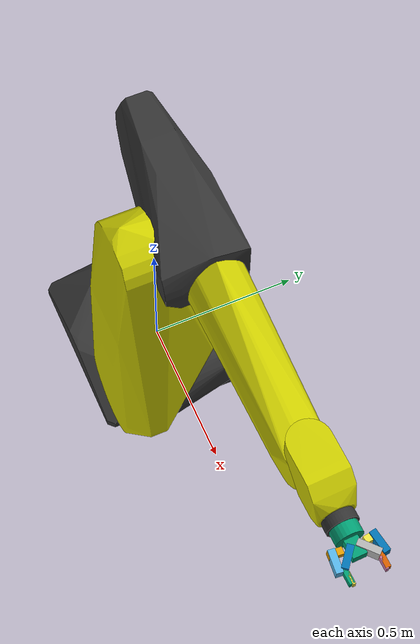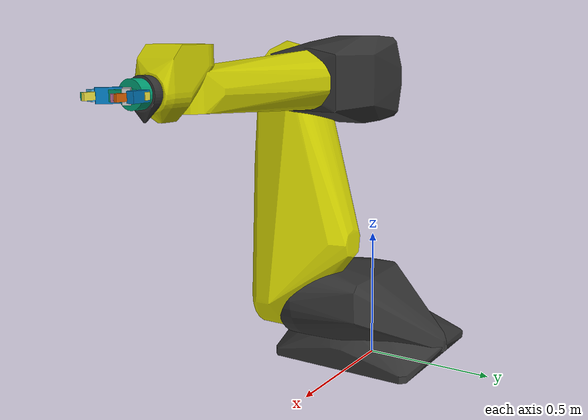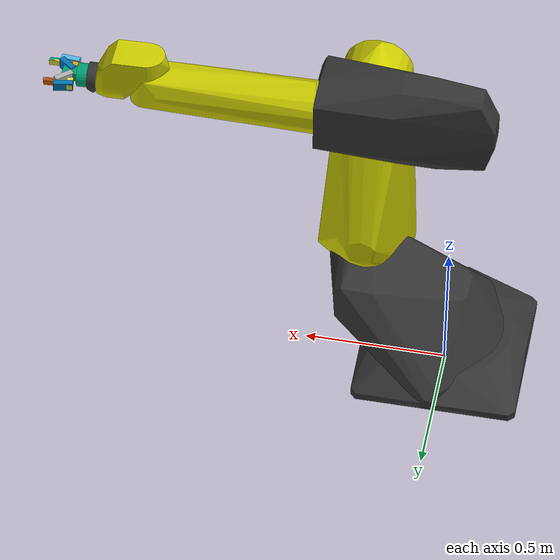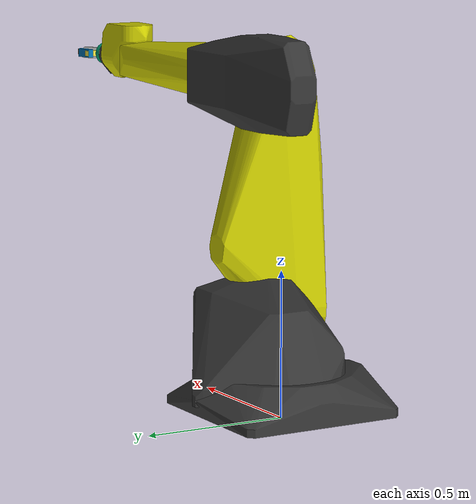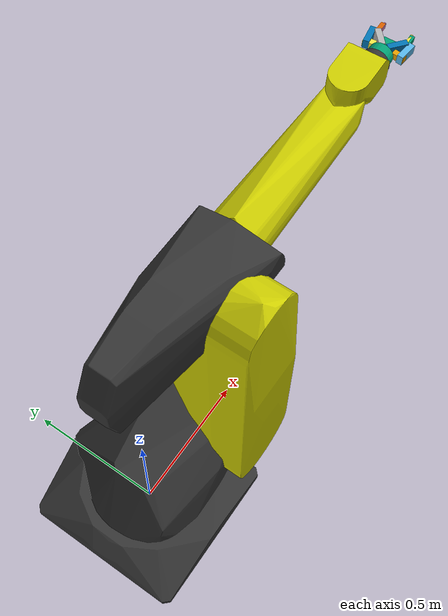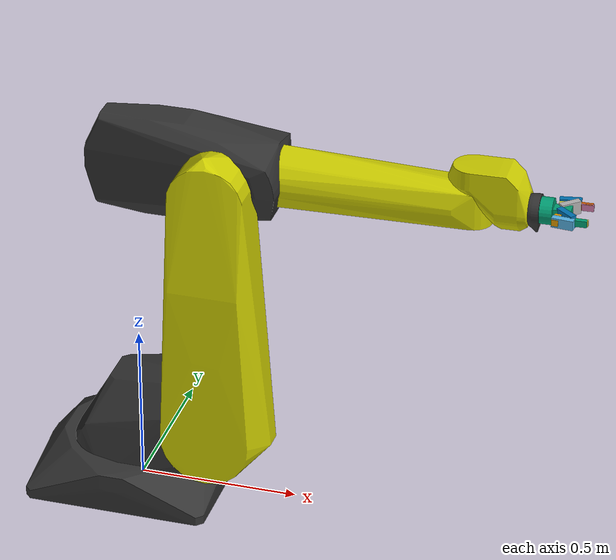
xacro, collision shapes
<?xml version="1.0"?>
<robot xmlns:xacro="http://ros.org/wiki/xacro" name="sr25_claw">

	<!-- Import Gazebo configuration  -->
 	<xacro:include filename="$(find sef_roboter_support)/urdf/sr25.gazebo" />

	<!-- Import Rviz colors -->
 	<xacro:include filename="$(find sef_roboter_support)/urdf/materials.xacro" />

	<!-- Import Model -->
	<xacro:include filename="$(find sef_roboter_support)/urdf/sr25_macro.xacro" />
	<xacro:sef_roboter prefix=""/>

	<!-- Import of the robotiq 2finger 85 universal gripper -->
	<xacro:include filename="$(find robotiq_2f_model)/model/robotiq_2f_85.urdf.xacro" />
	<xacro:robotiq_2f_85 name="simple_gripper" parent="tool0" precise_collision="false" adaptive_transmission="false" with_pads="true">
		<origin xyz="0 0 0.035" rpy="0 0 0"/>
	</xacro:robotiq_2f_85>

</robot>

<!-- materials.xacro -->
<robot>

  <material name="black">
    <color rgba="0.0 0.0 0.0 1.0"/>
  </material>

  <material name="blue">
    <color rgba="0.0 0.0 0.8 1.0"/>
  </material>

  <material name="green">
    <color rgba="0.0 0.8 0.0 1.0"/>
  </material>

  <material name="grey">
    <color rgba="0.2 0.2 0.2 1.0"/>
  </material>

  <material name="orange">
    <color rgba="${255/255} ${108/255} ${10/255} 1.0"/>
  </material>

  <material name="brown">
    <color rgba="${222/255} ${207/255} ${195/255} 1.0"/>
  </material>

  <material name="red">
    <color rgba="0.8 0.0 0.0 1.0"/>
  </material>

  <material name="white">
    <color rgba="1.0 1.0 1.0 1.0"/>
  </material>

  <material name="yellow">
    <color rgba="1 1 0 1.0"/>
  </material>

   <material name="sef_yellow">
    <color rgba="0.8 0.8 0.0 1.0"/>
  </material>

</robot>

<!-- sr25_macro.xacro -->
<robot xmlns:xacro="http://ros.org/wiki/xacro">
  <xacro:macro name="sef_roboter" params="prefix">
    <link name="world"/>
    <link name="start_of_service"/>

    <link name="${prefix}base_link">
      <visual>
        <origin xyz="0.0 0.0 0.015" rpy="0 0 0"/>
        <geometry>
          <mesh filename="package://sef_roboter_support/meshes/sr25/visual/base_link.stl" />
        </geometry>
        <material name="grey"/>
      </visual>

      <collision>
          <origin xyz="0.0 -0.001694 0.042616" rpy="0 0 0"/>
        <geometry>
          <mesh filename="package://sef_roboter_support/meshes/sr25/collision/base_link.stl"  />
        </geometry>
        <material name="yellow"/>
      </collision>

      <inertial>
        <origin xyz="0.0 -0.001694 0.042616" rpy="0 0 0"/>
        <mass value="100"/>
        <inertia
          ixx="0.723" ixy="0.0" ixz="0.0"
          iyy="0.709" iyz="0.003"
          izz="1.346"/>
        </inertial>
    </link>

    <link name="${prefix}link_1">
      <visual>
        <geometry>
          <mesh filename="package://sef_roboter_support/meshes/sr25/visual/link_1.stl"  />
        </geometry>
        <material name="grey"/>
      </visual>

      <collision>
        <geometry>
          <mesh filename="package://sef_roboter_support/meshes/sr25/collision/link_1.stl"  />
        </geometry>
        <material name="yellow" />
      </collision>

      <inertial>
        <origin xyz="0.034335 0.177684 -0.134564" rpy="0 0 0"/>
          <mass value="100"/>
          <inertia
            ixx="0.681" ixy="-0.024" ixz="0.053"
            iyy="0.713" iyz="0.160"
            izz="0.351"/>
          </inertial>
    </link>

    <link name="${prefix}link_2">
      <visual>
        <geometry>
          <mesh filename="package://sef_roboter_support/meshes/sr25/visual/link_2.stl"  />
        </geometry>
        <material name="sef_yellow" />
      </visual>
      <collision>
        <geometry>
          <mesh filename="package://sef_roboter_support/meshes/sr25/collision/link_2.stl"  />
        </geometry>
        <material name="yellow" />
      </collision>

      <inertial>
        <origin xyz="0.194024 -0.000727 -0.358696" rpy="0 0 0"/>
          <mass value="60"/>
          <inertia
            ixx="2.573" ixy="-0.001" ixz="-0.058"
            iyy="2.564" iyz="0.007"
            izz="0.231"/>
		      </inertial>
    </link>

    <link name="${prefix}link_3">
      <visual>
        <geometry>
          <mesh filename="package://sef_roboter_support/meshes/sr25/visual/link_3.stl" />
        </geometry>
        <material name="grey" />
      </visual>

      <collision>
        <geometry>
          <mesh filename="package://sef_roboter_support/meshes/sr25/collision/link_3.stl" />
        </geometry>
        <material name="yellow" />
      </collision>

      <inertial>
        <origin xyz="0.002004 0.095949 0.000394" rpy="0 0 0"/>
          <mass value="60"/>
          <inertia
            ixx="0.617" ixy="0.009" ixz="0.001"
            iyy="0.151" iyz="-0.009"
            izz="0.571"/>
		      </inertial>
    </link>

    <link name="${prefix}link_4">
      <visual>
        <geometry>
          <mesh filename="package://sef_roboter_support/meshes/sr25/visual/link_4.stl" />
        </geometry>
        <material name="sef_yellow" />
      </visual>

      <collision>
        <geometry>
          <mesh filename="package://sef_roboter_support/meshes/sr25/collision/link_4.stl" />
        </geometry>
        <material name="yellow" />
      </collision>

      <inertial>
        <origin xyz="0.000011 -0.329729 -0.000248" rpy="0 0 0"/>
        <mass value="40"/>
        <inertia
				  ixx="0.233" ixy="0.0" ixz="0.0"
				  iyy="0.010" iyz="0.0"
				  izz="0.233"/>
        </inertial>
    </link>

    <link name="${prefix}link_5">
      <visual>
        <geometry>
          <mesh filename="package://sef_roboter_support/meshes/sr25/visual/link_5.stl" />
        </geometry>
        <material name="sef_yellow" />
      </visual>

      <collision>
        <geometry>
          <mesh filename="package://sef_roboter_support/meshes/sr25/collision/link_5.stl" />
        </geometry>
        <material name="yellow" />
      </collision>

      <inertial>
        <origin xyz="-0.000029 -0.074224 -0.055689" rpy="0 0 0"/>
        <mass value="10"/>
        <inertia
				  ixx="0.015" ixy="0.0" ixz="0.0"
				  iyy="0.009" iyz="0.004"
				  izz="0.011"/>
        </inertial>
    </link>

    <link name="${prefix}link_6">
      <visual>
        <geometry>
          <mesh filename="package://sef_roboter_support/meshes/sr25/visual/link_6.stl" />
        </geometry>
        <material name="grey" />
      </visual>

      <collision>
        <geometry>
          <mesh filename="package://sef_roboter_support/meshes/sr25/collision/link_6.stl" />
        </geometry>
        <material name="yellow" />
      </collision>

      <inertial>
        <origin xyz="0.0 -0.000199 0.017661" rpy="0 0 0"/>
        <mass value="5"/>
          <inertia
            ixx="0.001" ixy="0.0" ixz="0.0"
            iyy="0.001" iyz="0.0"
            izz="0.001"/>
          </inertial>
    </link>

    <link name="${prefix}tool0"/>
    <!-- end of link list -->

    <!-- joint list -->
    <joint name="${prefix}joint_orig" type="fixed">
      <parent link="world"/>
      <child link="${prefix}base_link"/>
    </joint>

    <joint name="${prefix}joint_start_of_service" type="fixed">
      <parent link="world"/>
      <child link="${prefix}start_of_service"/>
      <origin xyz="0 0 0" rpy="0 0 1.5745"/>
    </joint>

    <joint name="${prefix}joint_1" type="revolute">
			<parent link="${prefix}base_link"/>
			<child link="${prefix}link_1"/>
			<origin xyz="0 0 0.075738" rpy="1.5708 0 -1.5745"/>
			<axis xyz="0 -1 0" />
      <limit lower="-1.57" upper="1.57" effort="10000" velocity="1" />
      <dynamics damping="0.7" friction="100"/>
    </joint>

    <joint name="${prefix}joint_2" type="revolute">
			<parent link="${prefix}link_1"/>
			<child link="${prefix}link_2"/>
			<origin xyz="0 0.24264 -0.29599" rpy="1.5687 0 0"/>
			<axis xyz="-1 0 0" />
      <limit lower="-0.5" upper="1.5" effort="10000" velocity="1" />
			<dynamics damping="0.7" friction="100"/>
    </joint>

    <joint name="${prefix}joint_3" type="revolute">
			<parent link="${prefix}link_2"/>
			<child link="${prefix}link_3"/>
			<origin xyz="0 0 -0.79724" rpy="0.005529 0 0"/>
			<axis xyz="-1 0 0" />
      <limit lower="-1.5" upper="0.5" effort="10000" velocity="1" />
      <dynamics damping="0.7" friction="100"/>
    </joint>

    <joint name="${prefix}joint_4" type="revolute">
			<parent link="${prefix}link_3"/>
			<child link="${prefix}link_4"/>
			<origin xyz="0 -0.15811 0" rpy="0 0.0014787 0"/>
			<axis xyz="0 1 0" />
      <limit lower="-1.57" upper="1.57" effort="10000" velocity="1" />
      <dynamics damping="0.7" friction="100"/>
    </joint>

    <joint name="${prefix}joint_5" type="revolute">
			<parent link="${prefix}link_4"/>
			<child link="${prefix}link_5"/>
			<origin xyz="0 -0.58433 0" rpy="0 0 -0.033693"/>
			<axis xyz="0 0 1" />
      <limit lower="-1.6" upper="1.6" effort="10000" velocity="1" />
			<dynamics damping="0.7" friction="100"/>
    </joint>

    <joint name="${prefix}joint_6" type="revolute">
			<parent link="${prefix}link_5"/>
      <child link="${prefix}link_6"/>
      <origin xyz="0 -0.16405 -0.00548" rpy="-1.5707 0 3.1415"/>
			<axis xyz="0 0 -1 " />
			<limit lower="-2.5" upper="2.5" effort="100" velocity="1" />
      <dynamics damping="0.7" friction="100"/>
    </joint>

    <joint name="${prefix}joint_6-tool0" type="fixed">
      <parent link="${prefix}link_6"/>
      <child link="${prefix}tool0"/>
      <origin xyz="0 0 0" rpy="0 0 -1.57"/>
    </joint>
    <!-- end of joint list -->

    <transmission name="tran_1">
			<type>transmission_interface/SimpleTransmission</type>
			<joint name="joint_1">
			  <hardwareInterface>VelocityJointInterface</hardwareInterface>
			</joint>
			<actuator name="motor_1">
			  <hardwareInterface>VelocityJointInterface</hardwareInterface>
			  <mechanicalReduction>80</mechanicalReduction>
			</actuator>
    </transmission>

    <transmission name="tran_2">
      <type>transmission_interface/SimpleTransmission</type>
			<joint name="joint_2">
			  <hardwareInterface>VelocityJointInterface</hardwareInterface>
			</joint>
			<actuator name="motor_2">
			  <hardwareInterface>VelocityJointInterface</hardwareInterface>
			  <mechanicalReduction>120</mechanicalReduction>
			</actuator>
    </transmission>

    <transmission name="tran_3">
			<type>transmission_interface/SimpleTransmission</type>
			<joint name="joint_3">
			  <hardwareInterface>VelocityJointInterface</hardwareInterface>
			</joint>
			<actuator name="motor_3">
			  <hardwareInterface>VelocityJointInterface</hardwareInterface>
			  <mechanicalReduction>108</mechanicalReduction>
			</actuator>
    </transmission>

    <transmission name="tran_4">
			<type>transmission_interface/SimpleTransmission</type>
			<joint name="joint_4">
			  <hardwareInterface>VelocityJointInterface</hardwareInterface>
			</joint>
			<actuator name="motor_4">
			  <hardwareInterface>VelocityJointInterface</hardwareInterface>
			  <mechanicalReduction>76.5</mechanicalReduction>
			</actuator>
    </transmission>

    <transmission name="tran_5">
			<type>transmission_interface/SimpleTransmission</type>
			<joint name="joint_5">
			  <hardwareInterface>VelocityJointInterface</hardwareInterface>
			</joint>
			<actuator name="motor_5">
			  <hardwareInterface>VelocityJointInterface</hardwareInterface>
			  <mechanicalReduction>100.5</mechanicalReduction>
			</actuator>
    </transmission>

    <transmission name="tran_6">
			<type>transmission_interface/SimpleTransmission</type>
			<joint name="joint_6">
			  <hardwareInterface>VelocityJointInterface</hardwareInterface>
			</joint>
			<actuator name="motor_6">
			  <hardwareInterface>VelocityJointInterface</hardwareInterface>
			  <mechanicalReduction>92.2</mechanicalReduction>
			</actuator>
    </transmission>

	</xacro:macro>
</robot>

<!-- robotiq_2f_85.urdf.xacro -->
<!-- length is along the z-axis! -->

<robot xmlns:xacro="http://ros.org/wiki/xacro">
	<xacro:macro name="robotiq_2f_85" params="parent name precise_collision:=false adaptive_transmission:=false with_pads=true *origin">

	<xacro:macro name="cylinder_inertia" params="radius length mass">
		<inertia ixx="${mass * (3 * radius * radius + length * length) / 12}" iyy="${mass * radius* radius / 2}" izz="${mass * (3 * radius * radius + length * length) / 12}" ixy="0" iyz="0" ixz="0"/>

	</xacro:macro>
		<!-- base -->
		<joint name="${parent}_${name}_base_joint" type="fixed">
			<xacro:insert_block name="origin"/>
			<parent link="${parent}"/>
			<child link="${name}_base"/>
		</joint>
		<link name="${name}_base">
			<inertial>
				<mass value="0.1"/>
				<origin xyz="0 0 0.055"  />
				<cylinder_inertia radius="0.06" length="0.11" mass="0.1"/>
			</inertial>

			<visual>
				<geometry>
					<mesh filename="package://robotiq_2f_model/model/meshes/2f85/visual/base.dae" scale="0.001 0.001 0.001"/>
				</geometry>
			</visual>
			<xacro:unless value="${precise_collision}">
			<collision>
				<origin xyz="0 0 0.015" rpy="0 0 0"/>
				<geometry>
					<cylinder radius="0.04" length="0.045"/>
				</geometry>
			</collision>
			<collision>
				<origin xyz="0 0 0.06" rpy="0 0 0"/>
				<geometry>
					<box size="0.03 0.04 0.06"/>
				</geometry>
			</collision>
			</xacro:unless>
			<xacro:if value="${precise_collision}">
			<collision>
				<geometry>
					<mesh filename="package://robotiq_2f_model/model/meshes/2f85/collision/base.stl" scale="0.001 0.001 0.001"/>
				</geometry>
			</collision>
			</xacro:if>
		</link>

		<!-- right finger -->

		<joint name="${name}_right_driver_joint" type="revolute">
			<origin xyz="0 0.0306011 0.054904" rpy="0 0 0"/>
			<parent link="${name}_base"/>
			<child link="${name}_right_driver"/>
			<axis xyz="1 0 0"/>
			<limit lower="${0 * 3.141592 / 180}" upper="${50 * 3.141592 / 180}" effort="60" velocity="${110 * 3.141592 / 180}" />
		</joint>
		<link name="${name}_right_driver">
			<inertial>
				<mass value="0.1"/>
				<origin xyz="0 0 0.055"  />
				<cylinder_inertia radius="0.06" length="0.11" mass="0.1"/>
			</inertial>
			<visual>
				<geometry>
					<mesh filename="package://robotiq_2f_model/model/meshes/2f85/visual/driver.dae" scale="0.001 0.001 0.001"/>
				</geometry>
			</visual>
			<xacro:unless value="${precise_collision}">
			<collision>
				<origin xyz="0 0.02 0" rpy="-0.1 0 0"/>
				<geometry>
					<box size="0.02 0.04 0.02"/>
				</geometry>
			</collision>
			</xacro:unless>
			<xacro:if value="${precise_collision}">
			<collision>
				<geometry>
					<mesh filename="package://robotiq_2f_model/model/meshes/2f85/collision/driver.stl" scale="0.001 0.001 0.001"/>
				</geometry>
			</collision>
			</xacro:if>
		</link>

		<xacro:unless value="${adaptive_transmission}">
		<joint name="${name}_right_coupler_joint" type="fixed">
			<origin xyz="0 0.0315 -0.0041" rpy="0 0 0"/>
			<parent link="${name}_right_driver"/>
			<child link="${name}_right_coupler"/>
		</joint>
		</xacro:unless>
		<xacro:if value="${adaptive_transmission}">
			<joint name="${name}_right_coupler_joint" type="revolute">
			<origin xyz="0 0.0315 -0.0041" rpy="0 0 0"/>
			<parent link="${name}_right_driver"/>
			<child link="${name}_right_coupler"/>
			<axis xyz="1 0 0"/>
			<limit lower="${-170 * 3.141592 / 180}" upper="${170 * 3.141592 / 180}" effort="176" velocity="${110 * 3.141592 / 180}" />
		</joint>
		</xacro:if>
		<link name="${name}_right_coupler">
			<inertial>
				<mass value="0.1"/>
				<origin xyz="0 0 0.055"  />
				<cylinder_inertia radius="0.06" length="0.11" mass="0.1"/>
			</inertial>
			<visual>
				<geometry>
					<mesh filename="package://robotiq_2f_model/model/meshes/2f85/visual/coupler.dae" scale="0.001 0.001 0.001"/>
				</geometry>
			</visual>
			<xacro:unless value="${precise_collision}">
			<collision>
				<origin xyz="0 0.0 0.025" rpy="-1.7 0 0"/>
				<geometry>
					<box size="0.03 0.065 0.02"/>
				</geometry>
			</collision>
			</xacro:unless>
			<xacro:if value="${precise_collision}">
				<collision>
					<geometry>
						<mesh filename="package://robotiq_2f_model/model/meshes/2f85/collision/coupler.stl" scale="0.001 0.001 0.001"/>
					</geometry>
				</collision>
			</xacro:if>
		</link>

		<joint name="${name}_right_follower_joint" type="revolute">
			<origin xyz="0 0.0061 0.0471" rpy="0 0 0"/>
			<parent link="${name}_right_coupler"/>
			<child link="${name}_right_follower"/>
			<axis xyz="1 0 0"/>
			<limit lower="${-170 * 3.141592 / 180}" upper="${170 * 3.141592 / 180}" effort="176" velocity="${110 * 3.141592 / 180}" />

			<xacro:unless value="${adaptive_transmission}">
			<mimic joint="${name}_right_driver_joint" multiplier="-1"/>
			</xacro:unless>
		</joint>
		<link name="${name}_right_follower">
			<visual>
				<geometry>
					<mesh filename="package://robotiq_2f_model/model/meshes/2f85/visual/follower.dae" scale="0.001 0.001 0.001"/>
				</geometry>
			</visual>
			<xacro:unless value="${precise_collision}">
			<collision>
				<origin xyz="0 -0.018 0.022" rpy="0 0 0"/>
				<geometry>
					<box size="0.02 0.015 0.048"/>
				</geometry>
			</collision>
			</xacro:unless>
			<xacro:if value="${precise_collision}">
			<collision>
				<geometry>
					<mesh filename="package://robotiq_2f_model/model/meshes/2f85/collision/follower.stl" scale="0.001 0.001 0.001"/>
				</geometry>
			</collision>
			</xacro:if>
		</link>

		<joint name="${name}_right_pad_joint" type="fixed">
			<parent link="${name}_right_follower"/>
			<child link="${name}_right_pad"/>
		</joint>
		<link name="${name}_right_pad">
			<inertial>
				<mass value="0.1"/>
				<origin xyz="0 0 0.055"  />
				<cylinder_inertia radius="0.06" length="0.11" mass="0.1"/>
			</inertial>
			<visual>
				<geometry>
					<mesh filename="package://robotiq_2f_model/model/meshes/2f85/visual/pad.dae" scale="0.001 0.001 0.001"/>
				</geometry>
			</visual>
			<xacro:unless value="${precise_collision}">
			<collision>
				<origin xyz="0 -0.022 0.031" rpy="0 0 0"/>
				<geometry>
					<box size="0.02 0.008 0.036"/>
				</geometry>
			</collision>
			</xacro:unless>
			<xacro:if value="${precise_collision}">
			<collision>
				<geometry>
					<mesh filename="package://robotiq_2f_model/model/meshes/2f85/collision/pad.stl" scale="0.001 0.001 0.001"/>
				</geometry>
			</collision>
			</xacro:if>
		</link>

		<joint name="${name}_right_spring_link_joint" type="revolute">
			<origin xyz="0 0.012 0.0614" rpy="0 0 0"/>
			<parent link="${name}_base"/>
			<child link="${name}_right_spring_link"/>
			<axis xyz="1 0 0"/>
			<limit lower="${-170 * 3.141592 / 180}" upper="${170 * 3.141592 / 180}" effort="176" velocity="${110 * 3.141592 / 180}" />

			<xacro:unless value="${adaptive_transmission}">
			<mimic joint="${name}_right_driver_joint" multiplier="1"/>
			</xacro:unless>
		</joint>
		<link name="${name}_right_spring_link">
			<inertial>
				<mass value="0.1"/>
				<origin xyz="0 0 0.055"  />
				<cylinder_inertia radius="0.06" length="0.11" mass="0.1"/>
			</inertial>
			<visual>
				<geometry>
					<mesh filename="package://robotiq_2f_model/model/meshes/2f85/visual/spring_link.dae" scale="0.001 0.001 0.001"/>
				</geometry>
			</visual>
			<xacro:unless value="${precise_collision}">
			<collision>
				<origin xyz="0 0.018 0.018" rpy="-0.7068 0 0"/>
				<geometry>
					<box size="0.04 0.02 0.065"/>
				</geometry>
			</collision>
			</xacro:unless>
			<xacro:if value="${precise_collision}">
			<collision>
				<geometry>
					<mesh filename="package://robotiq_2f_model/model/meshes/2f85/collision/spring_link.stl" scale="0.001 0.001 0.001"/>
				</geometry>
			</collision>
			</xacro:if>
		</link>

		<!-- left finger -->

		<joint name="${name}_left_driver_joint" type="revolute">
			<origin xyz="0 -0.0306011 0.054904" rpy="0 0 3.141592653589793"/>
			<parent link="${name}_base"/>
			<child link="${name}_left_driver"/>
			<axis xyz="1 0 0"/>
			<limit lower="${0 * 3.141592 / 180}" upper="${41 * 3.141592 / 180}" effort="176" velocity="${110 * 3.141592 / 180}" />

			<xacro:unless value="${adaptive_transmission}">
			<mimic joint="${name}_right_driver_joint" multiplier="1"/>
			</xacro:unless>
		</joint>
		<link name="${name}_left_driver">
			<inertial>
				<mass value="0.1"/>
				<origin xyz="0 0 0.055"  />
				<cylinder_inertia radius="0.06" length="0.11" mass="0.1"/>
			</inertial>
			<visual>
				<geometry>
					<mesh filename="package://robotiq_2f_model/model/meshes/2f85/visual/driver.dae" scale="0.001 0.001 0.001"/>
				</geometry>
			</visual>
			<xacro:unless value="${precise_collision}">
			<collision>
				<origin xyz="0 0.02 0" rpy="-0.1 0 0"/>
				<geometry>
					<box size="0.02 0.04 0.02"/>
				</geometry>
			</collision>
			</xacro:unless>
			<xacro:if value="${precise_collision}">
			<collision>
				<geometry>
					<mesh filename="package://robotiq_2f_model/model/meshes/2f85/collision/driver.stl" scale="0.001 0.001 0.001"/>
				</geometry>
			</collision>
			</xacro:if>
		</link>

		<xacro:unless value="${adaptive_transmission}">
		<joint name="${name}_left_coupler_joint" type="fixed">
			<origin xyz="0 0.0315 -0.0041" rpy="0 0 0"/>
			<parent link="${name}_left_driver"/>
			<child link="${name}_left_coupler"/>
		</joint>
		</xacro:unless>
		<xacro:if value="${adaptive_transmission}">
			<joint name="${name}_left_coupler_joint" type="revolute">
			<origin xyz="0 0.0315 -0.0041" rpy="0 0 0"/>
			<parent link="${name}_left_driver"/>
			<child link="${name}_left_coupler"/>
			<axis xyz="1 0 0"/>
			<limit lower="${-170 * 3.141592 / 180}" upper="${170 * 3.141592 / 180}" effort="176" velocity="${110 * 3.141592 / 180}" />
		</joint>
		</xacro:if>
		<link name="${name}_left_coupler">
			<inertial>
				<mass value="0.1"/>
				<origin xyz="0 0 0.055"  />
				<cylinder_inertia radius="0.06" length="0.11" mass="0.1"/>
			</inertial>
			<visual>
				<geometry>
					<mesh filename="package://robotiq_2f_model/model/meshes/2f85/visual/coupler.dae" scale="0.001 0.001 0.001"/>
				</geometry>
			</visual>
			<xacro:unless value="${precise_collision}">
			<collision>
				<origin xyz="0 0.0 0.025" rpy="-1.7 0 0"/>
				<geometry>
					<box size="0.03 0.065 0.02"/>
				</geometry>
			</collision>
			</xacro:unless>
			<xacro:if value="${precise_collision}">
				<collision>
					<geometry>
						<mesh filename="package://robotiq_2f_model/model/meshes/2f85/collision/coupler.stl" scale="0.001 0.001 0.001"/>
					</geometry>
				</collision>
			</xacro:if>
		</link>

		<joint name="${name}_left_follower_joint" type="revolute">
			<origin xyz="0 0.0061 0.0471" rpy="0 0 0"/>
			<parent link="${name}_left_coupler"/>
			<child link="${name}_left_follower"/>
			<axis xyz="1 0 0"/>
			<limit lower="${-170 * 3.141592 / 180}" upper="${170 * 3.141592 / 180}" effort="176" velocity="${110 * 3.141592 / 180}" />

			<xacro:unless value="${adaptive_transmission}">
			<mimic joint="${name}_right_driver_joint" multiplier="-1"/>
			</xacro:unless>
		</joint>
		<link name="${name}_left_follower">
			<visual>
				<geometry>
					<mesh filename="package://robotiq_2f_model/model/meshes/2f85/visual/follower.dae" scale="0.001 0.001 0.001"/>
				</geometry>
			</visual>
			<xacro:unless value="${precise_collision}">
			<collision>
				<origin xyz="0 -0.018 0.022" rpy="0 0 0"/>
				<geometry>
					<box size="0.02 0.015 0.048"/>
				</geometry>
			</collision>
			</xacro:unless>
			<xacro:if value="${precise_collision}">
			<collision>
				<geometry>
					<mesh filename="package://robotiq_2f_model/model/meshes/2f85/collision/follower.stl" scale="0.001 0.001 0.001"/>
				</geometry>
			</collision>
			</xacro:if>
		</link>

		<joint name="${name}_left_pad_joint" type="fixed">
			<parent link="${name}_left_follower"/>
			<child link="${name}_left_pad"/>
		</joint>
		<link name="${name}_left_pad">
			<inertial>
				<mass value="0.1"/>
				<origin xyz="0 0 0.055"  />
				<cylinder_inertia radius="0.06" length="0.11" mass="0.1"/>
			</inertial>
			<visual>
				<geometry>
					<mesh filename="package://robotiq_2f_model/model/meshes/2f85/visual/pad.dae" scale="0.001 0.001 0.001"/>
				</geometry>
			</visual>
			<xacro:unless value="${precise_collision}">
			<collision>
				<origin xyz="0 -0.022 0.031" rpy="0 0 0"/>
				<geometry>
					<box size="0.02 0.008 0.036"/>
				</geometry>
			</collision>
			</xacro:unless>
			<xacro:if value="${precise_collision}">
			<collision>
				<geometry>
					<mesh filename="package://robotiq_2f_model/model/meshes/2f85/collision/pad.stl" scale="0.001 0.001 0.001"/>
				</geometry>
			</collision>
			</xacro:if>
		</link>

		<joint name="${name}_left_spring_link_joint" type="revolute">
			<origin xyz="0 -0.012 0.0614" rpy="0 0 3.141592653589793"/>
			<parent link="${name}_base"/>
			<child link="${name}_left_spring_link"/>
			<axis xyz="1 0 0"/>
			<limit lower="${-170 * 3.141592 / 180}" upper="${170 * 3.141592 / 180}" effort="176" velocity="${110 * 3.141592 / 180}" />

			<xacro:unless value="${adaptive_transmission}">
			<mimic joint="${name}_right_driver_joint" multiplier="1"/>
			</xacro:unless>
		</joint>
		<link name="${name}_left_spring_link">
			<inertial>
				<mass value="0.1"/>
				<origin xyz="0 0 0.055"  />
				<cylinder_inertia radius="0.06" length="0.11" mass="0.1"/>
			</inertial>
			<visual>
				<geometry>
					<mesh filename="package://robotiq_2f_model/model/meshes/2f85/visual/spring_link.dae" scale="0.001 0.001 0.001"/>
				</geometry>
			</visual>
			<xacro:unless value="${precise_collision}">
			<collision>
				<origin xyz="0 0.018 0.018" rpy="-0.7068 0 0"/>
				<geometry>
					<box size="0.04 0.02 0.065"/>
				</geometry>
			</collision>
			</xacro:unless>
			<xacro:if value="${precise_collision}">
			<collision>
				<geometry>
					<mesh filename="package://robotiq_2f_model/model/meshes/2f85/collision/spring_link.stl" scale="0.001 0.001 0.001"/>
				</geometry>
			</collision>
			</xacro:if>
		</link>

		<transmission name="${name}_right_driver_trans">
			<type>transmission_interface/SimpleTransmission</type>
			<joint name="${name}_right_driver_joint">
				<hardwareInterface>PositionJointInterface</hardwareInterface>
			</joint>
			<actuator name="${name}_right_driver_motor">
				<mechanicalReduction>1</mechanicalReduction>
			</actuator>
		</transmission>
	</xacro:macro>
</robot>
